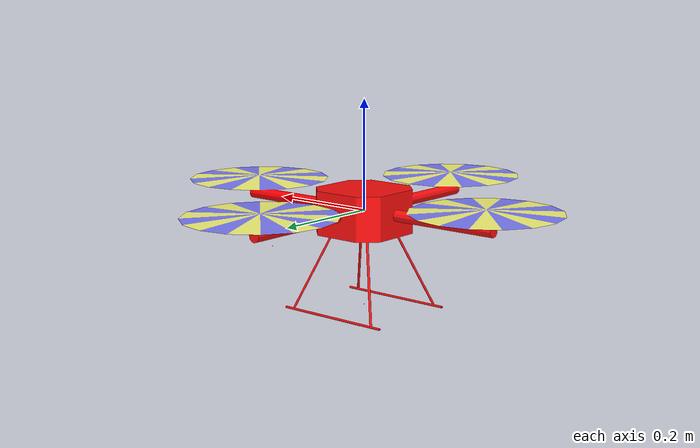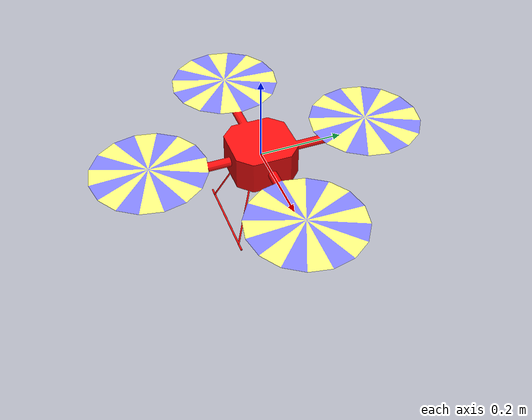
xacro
<?xml version="1.0"?>

<robot name="quadrotor" xmlns:xacro="http://www.ros.org/wiki/xacro">

    <xacro:property name="M_PI" value="3.1415926535897931" />

    <!-- Included URDF Files -->
    <xacro:include filename="$(find hector_quadrotor_description)/urdf/quadrotor_base.urdf.xacro" />

    <!-- Instantiate quadrotor_base_macro once (has no parameters atm) -->
    <xacro:quadrotor_base_macro />

    <!-- Downward Kinect -->
    <xacro:include filename="$(find hector_sensors_description)/urdf/kinect_camera.urdf.xacro" />
    <xacro:kinect_camera name="downward_camera" parent="base_link">
      <origin xyz="0.0 0.0 -0.175" rpy="${M_PI/2} ${M_PI/2} 0"/>
    </xacro:kinect_camera>

    <!-- Forward Kinect -->
    <xacro:include filename="$(find hector_sensors_description)/urdf/kinect_camera.urdf.xacro" />
    <xacro:kinect_camera name="forward_camera" parent="base_link">
      <origin xyz="0.23 0.0 -0.1" rpy="0 0 0"/>
    </xacro:kinect_camera>

</robot>

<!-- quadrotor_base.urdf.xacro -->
<robot xmlns:xacro="http://www.ros.org/wiki/xacro">

  <xacro:property name="pi" value="3.1415926535897931" />

  <!-- Main quadrotor link -->
  <xacro:macro name="quadrotor_base_macro">
    <link name="base_link">
      <inertial>
        <mass value="1.477" />
        <origin xyz="0 0 0" />
        <inertia ixx="0.01152" ixy="0.0" ixz="0.0" iyy="0.01152" iyz="0.0" izz="0.0218" />
      </inertial>

      <visual>
        <origin xyz="0 0 0" rpy="0 0 0" />
        <geometry>
          <mesh filename="package://hector_quadrotor_description/meshes/quadrotor/quadrotor_base.dae"/>
        </geometry>
      </visual>

      <collision>
        <origin xyz="0 0 0" rpy="0 0 0" />
        <geometry>
          <mesh filename="package://hector_quadrotor_description/meshes/quadrotor/quadrotor_base.stl"/>
        </geometry>
      </collision>
    </link>

    <!-- Sonar height sensor -->

  </xacro:macro>
</robot>

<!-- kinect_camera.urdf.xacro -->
<robot xmlns:xacro="http://www.ros.org/wiki/xacro">
    <xacro:include filename="$(find hector_xacro_tools)/urdf/inertia_tensors.urdf.xacro"/>
    <xacro:property name="M_PI" value="3.1415926535897931" />

    <xacro:macro name="kinect_camera_model" params="name parent *origin">
      <joint name="${name}_joint" type="fixed">
        <xacro:insert_block name="origin" />
        <parent link="${parent}"/>
        <child link="${name}_link"/>
      </joint>

      <link name="${name}_link">
        <xacro:inertial_sphere mass="0.01" diameter="0.07" />
        <visual>
          <origin xyz="0 0 0" rpy="0 0 0" />
          <geometry>
            <mesh filename="package://hector_sensors_description/meshes/kinect_camera/kinect_camera_simple.dae"/>
          </geometry>
        </visual>
        <collision>
          <origin xyz="0 0 0" rpy="0 0 0" />
          <geometry>
            <mesh filename="package://hector_sensors_description/meshes/kinect_camera/kinect_camera_simple.stl"/>
          </geometry>
        </collision>
      </link>

      <joint name="${name}_depth_joint" type="fixed">
        <origin xyz="0.0 -0.02 0.0" rpy="0 0 0" />
        <parent link="${name}_link" />
        <child link="${name}_depth_frame"/>
      </joint>

      <link name="${name}_depth_frame"/>

      <joint name="${name}_depth_optical_joint" type="fixed">
        <origin xyz="0 0 0" rpy="${-M_PI/2} 0.0 ${-M_PI/2}" />
        <parent link="${name}_depth_frame" />
        <child link="${name}_depth_optical_frame"/>
      </joint>

      <link name="${name}_depth_optical_frame"/>

      <joint name="${name}_rgb_joint" type="fixed">
        <origin xyz="0.0 -0.0125 0.0" rpy="0 0 0" />
        <parent link="${name}_link" />
        <child link="${name}_rgb_frame"/>
      </joint>

      <link name="${name}_rgb_frame"/>

      <joint name="${name}_rgb_optical_joint" type="fixed">
        <origin xyz="0 0 0" rpy="${-M_PI/2} 0.0 ${-M_PI/2}" />
        <parent link="${name}_rgb_frame" />
        <child link="${name}_rgb_optical_frame"/>
      </joint>

      <link name="${name}_rgb_optical_frame"/>

    </xacro:macro>

    <xacro:macro name="kinect_camera" params="name parent *origin">
      <xacro:kinect_camera_model name="${name}" parent="${parent}">
        <xacro:insert_block name="origin" />
      </xacro:kinect_camera_model>

      <gazebo reference="${name}_depth_frame">
        <sensor type="depth" name="${name}">
          <update_rate>20</update_rate>
          <camera>
            <horizontal_fov>${60 * M_PI/180.0}</horizontal_fov>
            <image>
              <format>B8G8R8</format>
              <width>640</width>
              <height>480</height>
            </image>
            <clip>
              <near>0.05</near>
              <far>3</far>
            </clip>
          </camera>
          <plugin name="${name}_camera_controller" filename="libgazebo_ros_openni_kinect.so">
            <imageTopicName>${name}/rgb/image_raw</imageTopicName>
            <cameraInfoTopicName>${name}/rgb/camera_info</cameraInfoTopicName>
            <depthImageTopicName>${name}/depth/image_raw</depthImageTopicName>
            <depthImageCameraInfoTopicName>${name}/depth/camera_info</depthImageCameraInfoTopicName>
            <pointCloudTopicName>${name}/depth/points</pointCloudTopicName>
            <frameName>${name}_depth_optical_frame</frameName>
          </plugin>
        </sensor>
      </gazebo>
    </xacro:macro>
  </robot>
